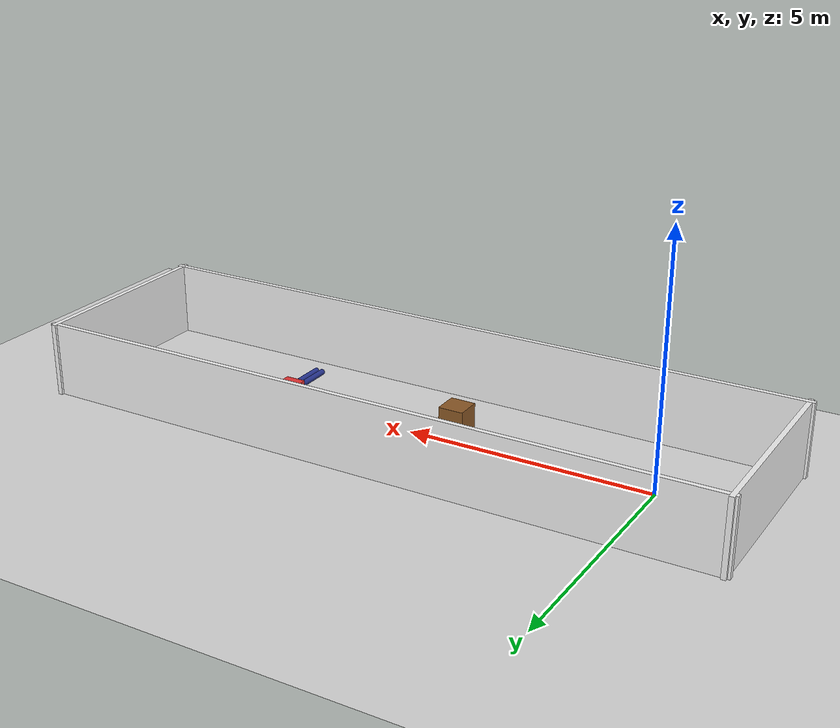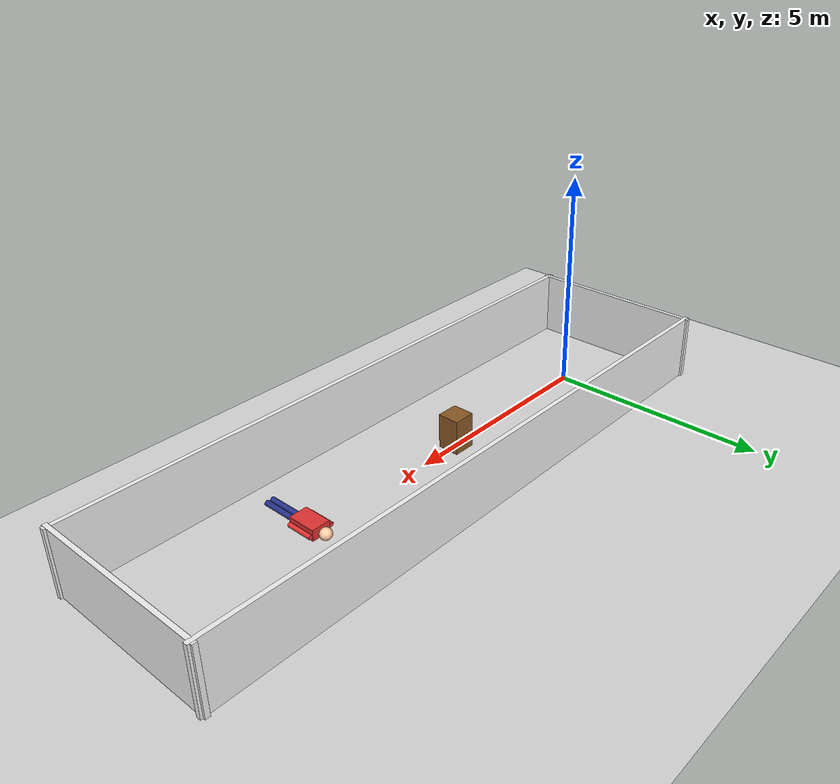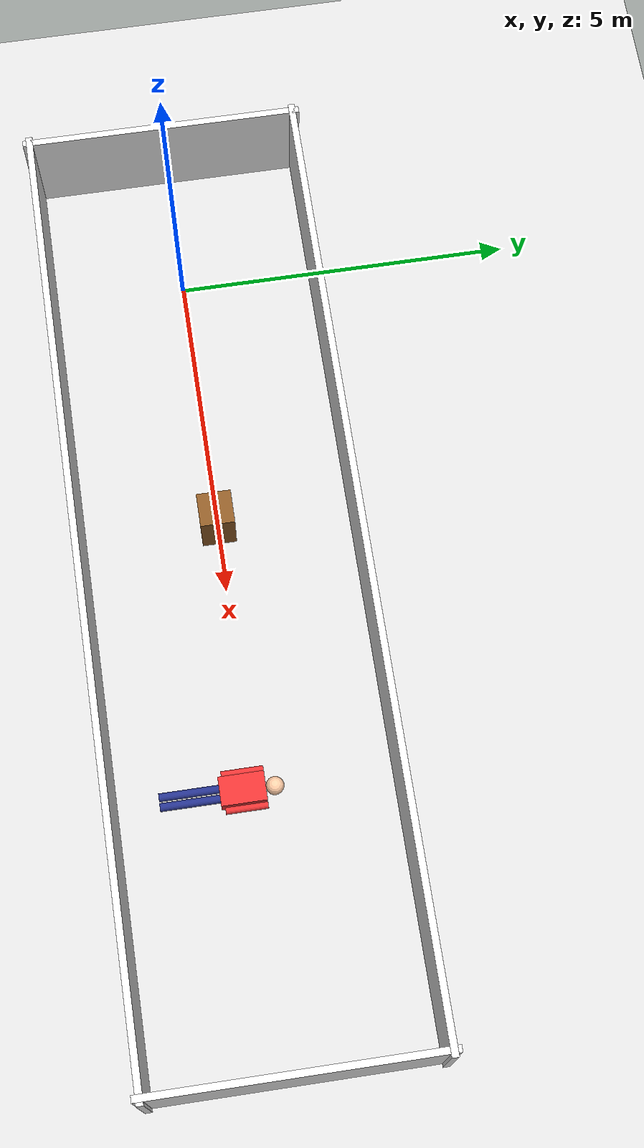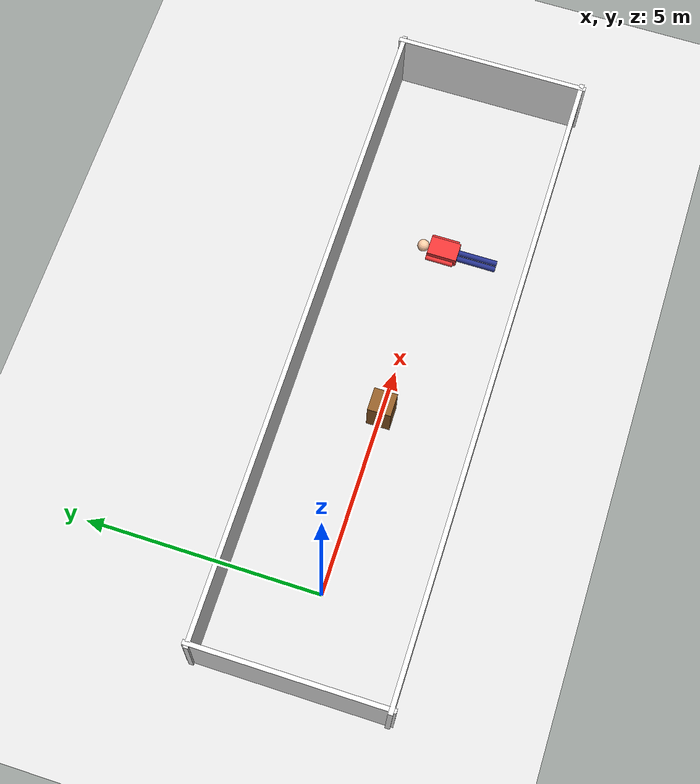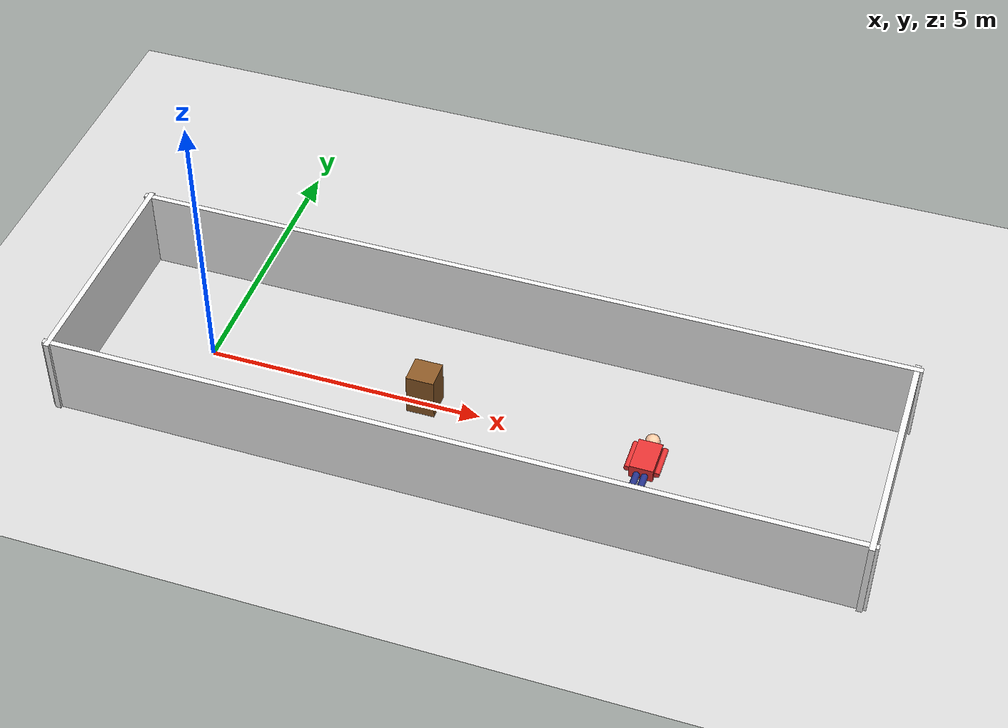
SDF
<?xml version="1.0" ?>
<sdf version="1.6">
  <world name="aed_corridor">

    <scene>
      <ambient>0.6 0.6 0.6 1</ambient>
      <background>0.85 0.9 0.95 1</background>
      <shadows>true</shadows>
    </scene>

    <light name="sun" type="directional">
      <cast_shadows>true</cast_shadows>
      <pose>0 0 10 0 0 0</pose>
      <diffuse>1.0 1.0 1.0 1</diffuse>
      <specular>0.3 0.3 0.3 1</specular>
      <attenuation>
        <range>1000</range>
        <constant>0.6</constant>
        <linear>0.005</linear>
        <quadratic>0.0005</quadratic>
      </attenuation>
      <direction>-0.5 0.1 -0.9</direction>
    </light>

    <light name="ceiling_1" type="point">
      <pose>2 0 2.5 0 0 0</pose>
      <diffuse>0.9 0.9 0.85 1</diffuse>
      <attenuation><range>8</range><constant>0.4</constant><linear>0.05</linear><quadratic>0.01</quadratic></attenuation>
    </light>
    <light name="ceiling_2" type="point">
      <pose>6 0 2.5 0 0 0</pose>
      <diffuse>0.9 0.9 0.85 1</diffuse>
      <attenuation><range>8</range><constant>0.4</constant><linear>0.05</linear><quadratic>0.01</quadratic></attenuation>
    </light>
    <light name="ceiling_3" type="point">
      <pose>10 0 2.5 0 0 0</pose>
      <diffuse>0.9 0.9 0.85 1</diffuse>
      <attenuation><range>8</range><constant>0.4</constant><linear>0.05</linear><quadratic>0.01</quadratic></attenuation>
    </light>

    <!-- 바닥 -->
    <model name="ground_plane">
      <static>true</static>
      <link name="link">
        <collision name="collision">
          <geometry><plane><normal>0 0 1</normal><size>100 100</size></plane></geometry>
          <surface><friction><ode><mu>100</mu><mu2>50</mu2></ode></friction></surface>
        </collision>
        <visual name="visual">
          <cast_shadows>false</cast_shadows>
          <geometry><plane><normal>0 0 1</normal><size>100 100</size></plane></geometry>
          <material><ambient>0.7 0.7 0.7 1</ambient><diffuse>0.85 0.85 0.85 1</diffuse></material>
        </visual>
      </link>
    </model>

    <!-- 복도 북쪽 벽 (긴 벽) — 14m -->
    <model name="wall_north">
      <static>true</static>
      <pose>5 2 0.75 0 0 0</pose>
      <link name="link">
        <collision name="collision"><geometry><box><size>14.2 0.1 1.5</size></box></geometry></collision>
        <visual name="visual">
          <geometry><box><size>14.2 0.1 1.5</size></box></geometry>
          <material><ambient>0.85 0.85 0.85 1</ambient><diffuse>0.95 0.95 0.95 1</diffuse></material>
        </visual>
      </link>
    </model>

    <!-- 복도 남쪽 벽 -->
    <model name="wall_south">
      <static>true</static>
      <pose>5 -2 0.75 0 0 0</pose>
      <link name="link">
        <collision name="collision"><geometry><box><size>14.2 0.1 1.5</size></box></geometry></collision>
        <visual name="visual">
          <geometry><box><size>14.2 0.1 1.5</size></box></geometry>
          <material><ambient>0.85 0.85 0.85 1</ambient><diffuse>0.95 0.95 0.95 1</diffuse></material>
        </visual>
      </link>
    </model>

    <!-- 복도 서쪽 끝 벽 (멀리, x=12) -->
    <model name="wall_west_end">
      <static>true</static>
      <pose>12 0 0.75 0 0 0</pose>
      <link name="link">
        <collision name="collision"><geometry><box><size>0.1 4.2 1.5</size></box></geometry></collision>
        <visual name="visual">
          <geometry><box><size>0.1 4.2 1.5</size></box></geometry>
          <material><ambient>0.85 0.85 0.85 1</ambient><diffuse>0.95 0.95 0.95 1</diffuse></material>
        </visual>
      </link>
    </model>

    <!-- 복도 동쪽 끝 벽 (로봇 뒤, x=-2) -->
    <model name="wall_east_end">
      <static>true</static>
      <pose>-2 0 0.75 0 0 0</pose>
      <link name="link">
        <collision name="collision"><geometry><box><size>0.1 4.2 1.5</size></box></geometry></collision>
        <visual name="visual">
          <geometry><box><size>0.1 4.2 1.5</size></box></geometry>
          <material><ambient>0.85 0.85 0.85 1</ambient><diffuse>0.95 0.95 0.95 1</diffuse></material>
        </visual>
      </link>
    </model>

    <!-- 장애물 (로봇-사람 사이 경로) — x=4, y=0 -->
    <model name="obstacle_box">
      <static>true</static>
      <pose>4 0 0.4 0 0 0</pose>
      <link name="link">
        <collision name="collision">
          <geometry><box><size>0.5 0.5 0.8</size></box></geometry>
        </collision>
        <visual name="visual">
          <geometry><box><size>0.5 0.5 0.8</size></box></geometry>
          <material><ambient>0.4 0.25 0.1 1</ambient><diffuse>0.55 0.35 0.15 1</diffuse></material>
        </visual>
      </link>
    </model>

    <!-- 쓰러진 사람 — x=8, y=-0.5, 복도를 가로질러 누움(yaw 90°).
         로컬 +x가 월드 +y가 되므로 발끝 y=-1.35, 몸통 y=-0.175, 머리 y=+0.28.
         복도 중앙(y≈0)으로 접근하는 로버가 환자의 가슴·어깨 쪽에 마주 서게 되어
         SCARA가 압박점·패드 부착점에 닿는다. -->
    <model name="fallen_person">
      <static>true</static>
      <pose>8 -0.5 0 0 0 1.5708</pose>
      <link name="link">
        <!-- 다리 (x축으로 누움) -->
        <collision name="leg_l_col">
          <pose>-0.425 0.07 0.1 0 1.5708 0</pose>
          <geometry><cylinder><radius>0.06</radius><length>0.85</length></cylinder></geometry>
        </collision>
        <visual name="leg_l_vis">
          <pose>-0.425 0.07 0.1 0 1.5708 0</pose>
          <geometry><cylinder><radius>0.06</radius><length>0.85</length></cylinder></geometry>
          <material><ambient>0.1 0.15 0.4 1</ambient><diffuse>0.15 0.2 0.55 1</diffuse></material>
        </visual>
        <collision name="leg_r_col">
          <pose>-0.425 -0.07 0.1 0 1.5708 0</pose>
          <geometry><cylinder><radius>0.06</radius><length>0.85</length></cylinder></geometry>
        </collision>
        <visual name="leg_r_vis">
          <pose>-0.425 -0.07 0.1 0 1.5708 0</pose>
          <geometry><cylinder><radius>0.06</radius><length>0.85</length></cylinder></geometry>
          <material><ambient>0.1 0.15 0.4 1</ambient><diffuse>0.15 0.2 0.55 1</diffuse></material>
        </visual>
        <!-- 몸통 -->
        <collision name="torso_col">
          <pose>0.325 0 0.13 0 0 0</pose>
          <geometry><box><size>0.65 0.42 0.25</size></box></geometry>
        </collision>
        <visual name="torso_vis">
          <pose>0.325 0 0.13 0 0 0</pose>
          <geometry><box><size>0.65 0.42 0.25</size></box></geometry>
          <material><ambient>0.7 0.15 0.15 1</ambient><diffuse>0.9 0.2 0.2 1</diffuse></material>
        </visual>
        <collision name="arm_l_col">
          <pose>0.35 0.26 0.13 0 1.5708 0</pose>
          <geometry><cylinder><radius>0.05</radius><length>0.6</length></cylinder></geometry>
        </collision>
        <visual name="arm_l_vis">
          <pose>0.35 0.26 0.13 0 1.5708 0</pose>
          <geometry><cylinder><radius>0.05</radius><length>0.6</length></cylinder></geometry>
          <material><ambient>0.7 0.15 0.15 1</ambient><diffuse>0.9 0.2 0.2 1</diffuse></material>
        </visual>
        <collision name="arm_r_col">
          <pose>0.35 -0.26 0.13 0 1.5708 0</pose>
          <geometry><cylinder><radius>0.05</radius><length>0.6</length></cylinder></geometry>
        </collision>
        <visual name="arm_r_vis">
          <pose>0.35 -0.26 0.13 0 1.5708 0</pose>
          <geometry><cylinder><radius>0.05</radius><length>0.6</length></cylinder></geometry>
          <material><ambient>0.7 0.15 0.15 1</ambient><diffuse>0.9 0.2 0.2 1</diffuse></material>
        </visual>
        <!-- 머리 -->
        <collision name="head_col">
          <pose>0.78 0 0.13 0 0 0</pose>
          <geometry><sphere><radius>0.13</radius></sphere></geometry>
        </collision>
        <visual name="head_vis">
          <pose>0.78 0 0.13 0 0 0</pose>
          <geometry><sphere><radius>0.13</radius></sphere></geometry>
          <material><ambient>0.9 0.7 0.55 1</ambient><diffuse>1.0 0.8 0.65 1</diffuse></material>
        </visual>
      </link>
    </model>

    <physics type="ode">
      <real_time_update_rate>1000</real_time_update_rate>
      <max_step_size>0.001</max_step_size>
      <real_time_factor>1.0</real_time_factor>
      <ode>
        <solver>
          <iters>200</iters>
        </solver>
      </ode>
    </physics>

    <gravity>0 0 -9.81</gravity>

    <plugin name="gazebo_ros_state" filename="libgazebo_ros_state.so">
      <update_rate>50</update_rate>
    </plugin>

    <gui>
      <camera name="user_camera">
        <pose>-3 0 6 0 0.7 0</pose>
      </camera>
    </gui>

  </world>
</sdf>
